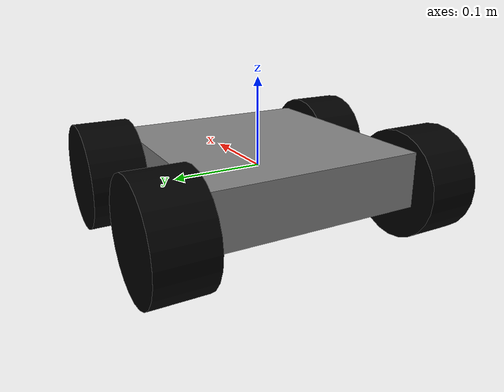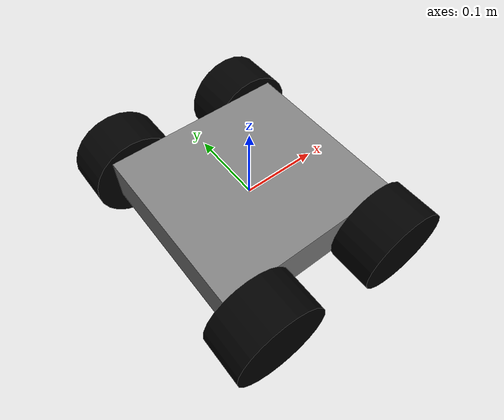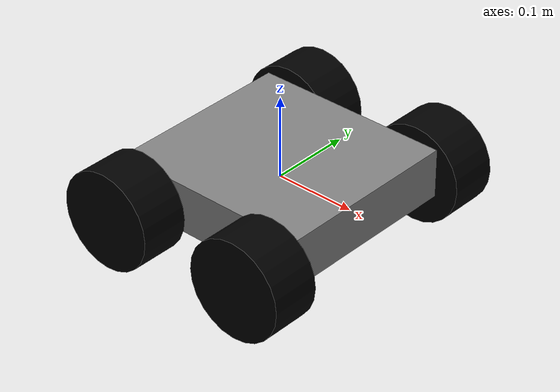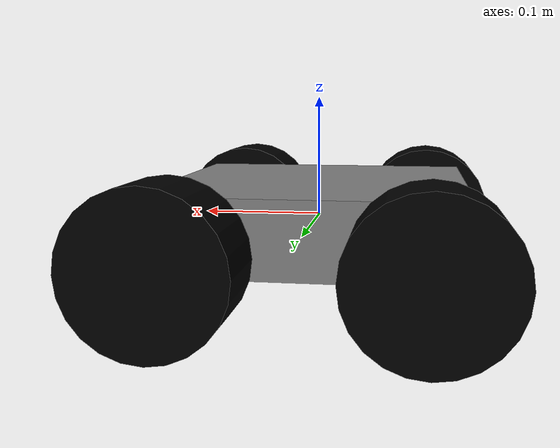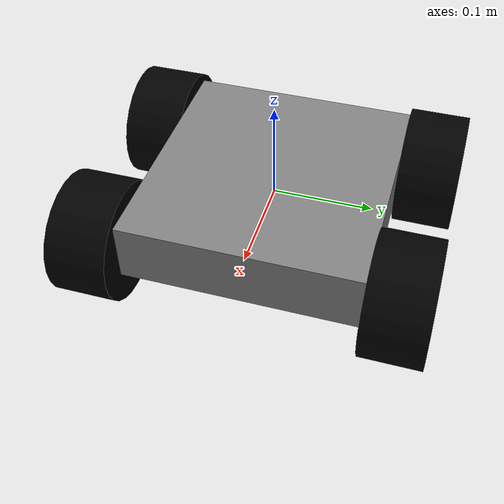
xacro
<?xml version="1.0"?>
<robot xmlns:xacro="http://www.ros.org/wiki/xacro">

    <xacro:include filename="inertial_macros.xacro"/>

    <xacro:property name="chassis_length" value="0.24765"/>
    <xacro:property name="chassis_width" value="0.23495"/>
    <xacro:property name="chassis_height" value="0.060325"/>

    <xacro:property name="wheel_radius" value="0.060325"/>
    <xacro:property name="wheel_width" value="0.060325"/>

    <xacro:property name="basis_wheel_x_distance" value="0.0936625"/>
    <xacro:property name="basis_wheel_y_distance" value="${(chassis_width/2)+(wheel_width/2)}"/>
    <xacro:property name="basis_wheel_z_distance" value="-0.01349375"/>

    <material name="gray">
        <color rgba="0.5 0.5 0.5 1"/>
    </material>

    <material name="black">
        <color rgba="0 0 0 1"/>
    </material>

    <material name="green">
        <color rgba="0 1 0 1"/>
    </material>

    <!--base link-->

    <link name="base_link">
    </link>

    <!--chassis-->

    <joint name="chassis_joint" type="fixed">
        <parent link="base_link"/>
        <child link="chassis"/>
        <origin xyz="${-chassis_length/2} 0 ${-chassis_height/2}"/>
    </joint>

    <link name="chassis">
        <visual>
            <origin xyz="${chassis_length/2} 0 ${chassis_height/2}"/>
            <geometry>
                <box size="${chassis_length} ${chassis_width} ${chassis_height}"/>
            </geometry>
            <material name="gray"/>
        </visual>
        <collision>
            <origin xyz="${chassis_length/2} 0 ${chassis_height/2}"/>
            <geometry>
                <box size="${chassis_length} ${chassis_width} ${chassis_height}"/>
            </geometry>
        </collision>
        <xacro:inertial_box mass="0.5" x="${chassis_length}" y="${chassis_width}" z="${chassis_height}">
            <origin xyz="${chassis_length/2} 0 ${chassis_height/2}" rpy="0 0 0"/>
        </xacro:inertial_box>
    </link>

    <gazebo reference="chassis">
        <material>Gazebo/Black</material>
    </gazebo>

    <!--left front wheel-->

    <joint name="left_front_wheel_joint" type="continuous">
        <parent link="base_link"/>
        <child link="left_front_wheel"/>
        <origin xyz="${basis_wheel_x_distance} ${basis_wheel_y_distance} ${basis_wheel_z_distance}" rpy="-${pi/2} 0 0"/>
        <axis xyz="0 0 1"/>
    </joint>

    <link name="left_front_wheel">
        <visual>
            <geometry>
                <cylinder radius="${wheel_radius}" length="${wheel_width}"/>
            </geometry>
            <material name="black"/>
        </visual>
        <collision>
            <geometry>
                <cylinder radius="${wheel_radius}" length="${wheel_width}"/>
            </geometry>
        </collision>
        <xacro:inertial_cylinder mass="0.1" length="${wheel_width}" radius="${wheel_radius}">
            <origin xyz="0 0 0" rpy="0 0 0"/>
        </xacro:inertial_cylinder>
    </link>

    <gazebo reference="left_front_wheel">
        <material>Gazebo/Gray</material>
    </gazebo>

    <!--right front wheel-->

    <joint name="right_front_wheel_joint" type="continuous">
        <parent link="base_link"/>
        <child link="right_front_wheel"/>
        <origin xyz="${basis_wheel_x_distance} -${basis_wheel_y_distance} ${basis_wheel_z_distance}" rpy="${pi/2} 0 0"/>
        <axis xyz="0 0 -1"/>
    </joint>

    <link name="right_front_wheel">
        <visual>
            <geometry>
                <cylinder radius="${wheel_radius}" length="${wheel_width}"/>
            </geometry>
            <material name="black"/>
        </visual>
        <collision>
            <geometry>
                <cylinder radius="${wheel_radius}" length="${wheel_width}"/>
            </geometry>
        </collision>
        <xacro:inertial_cylinder mass="0.1" length="${wheel_width}" radius="${wheel_radius}">
            <origin xyz="0 0 0" rpy="0 0 0"/>
        </xacro:inertial_cylinder>
    </link>

    <gazebo reference="right_front_wheel">
        <material>Gazebo/Gray</material>
    </gazebo>

    <!--left rear wheel-->

    <joint name="left_rear_wheel_joint" type="continuous">
        <parent link="base_link"/>
        <child link="left_rear_wheel"/>
        <origin xyz="-${basis_wheel_x_distance} ${basis_wheel_y_distance} ${basis_wheel_z_distance}" rpy="-${pi/2} 0 0"/>
        <axis xyz="0 0 1"/>
    </joint>

    <link name="left_rear_wheel">
        <visual>
            <geometry>
                <cylinder radius="${wheel_radius}" length="${wheel_width}"/>
            </geometry>
            <material name="black"/>
        </visual>
        <collision>
            <geometry>
                <cylinder radius="${wheel_radius}" length="${wheel_width}"/>
            </geometry>
        </collision>
        <xacro:inertial_cylinder mass="0.1" length="${wheel_width}" radius="${wheel_radius}">
            <origin xyz="0 0 0" rpy="0 0 0"/>
        </xacro:inertial_cylinder>
    </link>

    <gazebo reference="left_rear_wheel">
        <material>Gazebo/Gray</material>
    </gazebo>

    <!--right rear wheel-->

    <joint name="right_rear_wheel_joint" type="continuous">
        <parent link="base_link"/>
        <child link="right_rear_wheel"/>
        <origin xyz="-${basis_wheel_x_distance} -${basis_wheel_y_distance} ${basis_wheel_z_distance}" rpy="${pi/2} 0 0"/>
        <axis xyz="0 0 -1"/>
    </joint>

    <link name="right_rear_wheel">
        <visual>
            <geometry>
                <cylinder radius="${wheel_radius}" length="${wheel_width}"/>
            </geometry>
            <material name="black"/>
        </visual>
        <collision>
            <geometry>
                <cylinder radius="${wheel_radius}" length="${wheel_width}"/>
            </geometry>
        </collision>
        <xacro:inertial_cylinder mass="0.1" length="${wheel_width}" radius="${wheel_radius}">
            <origin xyz="0 0 0" rpy="0 0 0"/>
        </xacro:inertial_cylinder>
    </link>

    <gazebo reference="right_rear_wheel">
        <material>Gazebo/Gray</material>
    </gazebo>

</robot>

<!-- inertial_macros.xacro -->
<robot xmlns:xacro="http://www.ros.org/wiki/xacro" >

    <xacro:macro name="inertial_box" params="mass x y z *origin">
        <inertial>
            <xacro:insert_block name="origin"/>
            <mass value="${mass}" />
            <inertia ixx="${(1/12) * mass * (y*y+z*z)}" ixy="0.0" ixz="0.0"
                    iyy="${(1/12) * mass * (x*x+z*z)}" iyz="0.0"
                    izz="${(1/12) * mass * (x*x+y*y)}" />
        </inertial>
    </xacro:macro>

    <xacro:macro name="inertial_cylinder" params="mass length radius *origin">
        <inertial>
            <xacro:insert_block name="origin"/>
            <mass value="${mass}" />
            <inertia ixx="${(1/12) * mass * (3*radius*radius + length*length)}" ixy="0.0" ixz="0.0"
                    iyy="${(1/12) * mass * (3*radius*radius + length*length)}" iyz="0.0"
                    izz="${(1/2) * mass * (radius*radius)}" />
        </inertial>
    </xacro:macro>

</robot>
